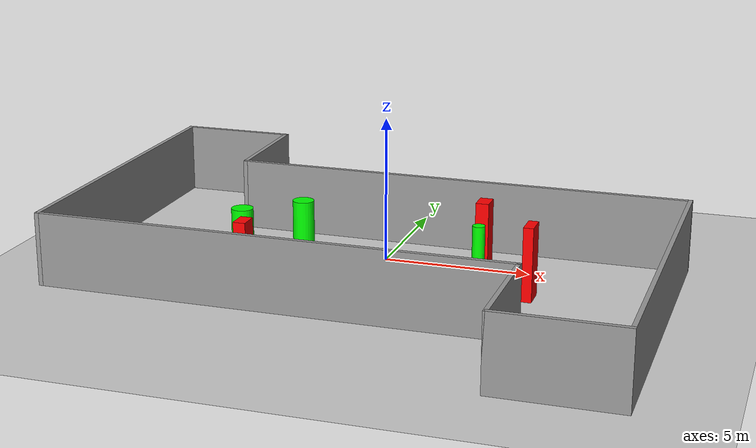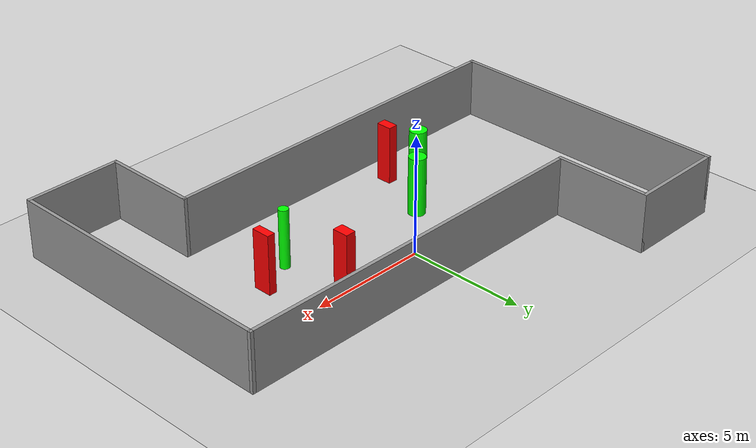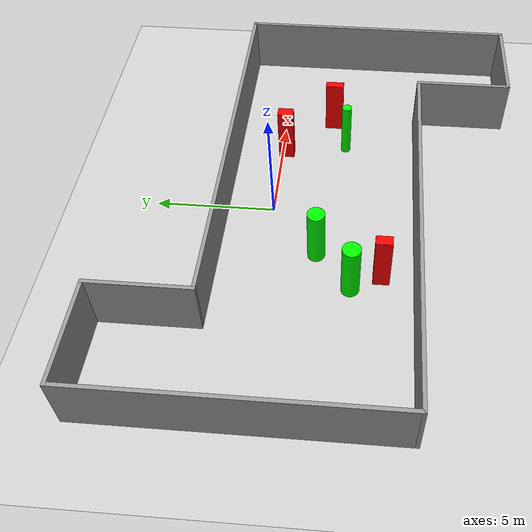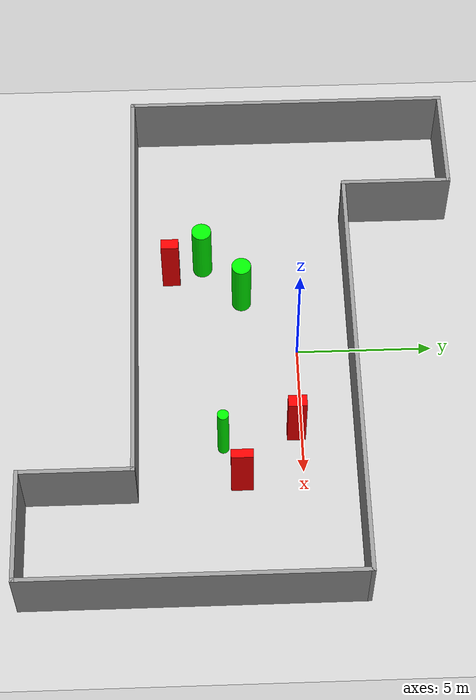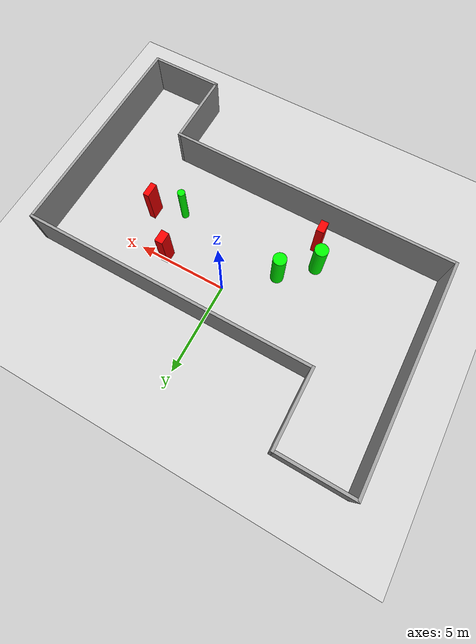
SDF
<sdf version="1.7">
 <world name="default">
  <light name="sun" type="directional">
   <pose>0 0 10 0 -0 0</pose>
   <diffuse>0.8 0.8 0.8 1</diffuse>
   <specular>0.2 0.2 0.2 1</specular>
   <attenuation>
    <range>1000</range>
    <constant>0.9</constant>
    <linear>0.01</linear>
    <quadratic>0.001</quadratic>
   </attenuation>
   <direction>-0.5 0.1 -0.9</direction>
   <spot><inner_angle>0</inner_angle><outer_angle>0</outer_angle><falloff>0</falloff></spot>
  </light>
  <model name="ground_plane">
   <static>1</static>
   <link name="link">
    <collision name="collision">
     <geometry><plane><normal>0 0 1</normal><size>100 100</size></plane></geometry>
     <surface>
      <contact><collide_bitmask>65535</collide_bitmask></contact>
      <friction><ode><mu>100</mu><mu2>50</mu2></ode></friction>
     </surface>
    </collision>
    <visual name="visual">
     <cast_shadows>0</cast_shadows>
     <geometry><plane><normal>0 0 1</normal><size>100 100</size></plane></geometry>
     <material>
      <script><uri>file://media/materials/scripts/gazebo.material</uri><name>Gazebo/Grey</name></script>
     </material>
    </visual>
   </link>
  </model>
  <gravity>0 0 -9.8</gravity>
  <magnetic_field>6e-06 2.3e-05 -4.2e-05</magnetic_field>
  <atmosphere type="adiabatic"/>
  <physics type="ode">
   <max_step_size>0.001</max_step_size>
   <real_time_factor>1</real_time_factor>
   <real_time_update_rate>1000</real_time_update_rate>
  </physics>
  <scene><ambient>0.4 0.4 0.4 1</ambient><background>0.7 0.7 0.7 1</background><shadows>1</shadows></scene>
  <spherical_coordinates>
   <surface_model>EARTH_WGS84</surface_model>
   <latitude_deg>0</latitude_deg>
   <longitude_deg>0</longitude_deg>
   <elevation>0</elevation>
   <heading_deg>0</heading_deg>
  </spherical_coordinates>
  <model name="my_base_walls">
   <link name="Wall_13">
    <collision name="Wall_13_Collision">
     <geometry><box><size>12.15 0.15 2.5</size></box></geometry>
     <pose>0 0 1.25 0 -0 0</pose>
    </collision>
    <visual name="Wall_13_Visual">
     <pose>0 0 1.25 0 -0 0</pose>
     <geometry><box><size>12.15 0.15 2.5</size></box></geometry>
     <material>
      <script><uri>file://media/materials/scripts/gazebo.material</uri><name>Gazebo/Grey</name></script>
      <ambient>1 1 1 1</ambient>
     </material>
     <meta><layer>0</layer></meta>
    </visual>
    <pose>10 -2 0 0 -0 1.5708</pose>
   </link>
   <link name="Wall_15">
    <collision name="Wall_15_Collision">
     <geometry><box><size>16.15 0.15 2.5</size></box></geometry>
     <pose>0 0 1.25 0 -0 0</pose>
    </collision>
    <visual name="Wall_15_Visual">
     <pose>0 0 1.25 0 -0 0</pose>
     <geometry><box><size>16.15 0.15 2.5</size></box></geometry>
     <material>
      <script><uri>file://media/materials/scripts/gazebo.material</uri><name>Gazebo/Grey</name></script>
      <ambient>1 1 1 1</ambient>
     </material>
     <meta><layer>0</layer></meta>
    </visual>
    <pose>2 4 0 0 -0 3.14159</pose>
   </link>
   <link name="Wall_17">
    <collision name="Wall_17_Collision">
     <geometry><box><size>4.15 0.15 2.5</size></box></geometry>
     <pose>0 0 1.25 0 -0 0</pose>
    </collision>
    <visual name="Wall_17_Visual">
     <pose>0 0 1.25 0 -0 0</pose>
     <geometry><box><size>4.15 0.15 2.5</size></box></geometry>
     <material>
      <script><uri>file://media/materials/scripts/gazebo.material</uri><name>Gazebo/Grey</name></script>
      <ambient>1 1 1 1</ambient>
     </material>
     <meta><layer>0</layer></meta>
    </visual>
    <pose>6 -6 0 0 -0 -1.5708</pose>
   </link>
   <link name="Wall_19">
    <collision name="Wall_19_Collision">
     <geometry><box><size>12.15 0.15 2.5</size></box></geometry>
     <pose>0 0 1.25 0 -0 0</pose>
    </collision>
    <visual name="Wall_19_Visual">
     <pose>0 0 1.25 0 -0 0</pose>
     <geometry><box><size>12.15 0.15 2.5</size></box></geometry>
     <material>
      <script><uri>file://media/materials/scripts/gazebo.material</uri><name>Gazebo/Grey</name></script>
      <ambient>1 1 1 1</ambient>
     </material>
     <meta><layer>0</layer></meta>
    </visual>
    <pose>-10 2 0 0 -0 1.5708</pose>
   </link>
   <link name="Wall_21">
    <collision name="Wall_21_Collision">
     <geometry><box><size>4.15 0.15 2.5</size></box></geometry>
     <pose>0 0 1.25 0 -0 0</pose>
    </collision>
    <visual name="Wall_21_Visual">
     <pose>0 0 1.25 0 -0 0</pose>
     <geometry><box><size>4.15 0.15 2.5</size></box></geometry>
     <material>
      <script><uri>file://media/materials/scripts/gazebo.material</uri><name>Gazebo/Grey</name></script>
      <ambient>1 1 1 1</ambient>
     </material>
     <meta><layer>0</layer></meta>
    </visual>
    <pose>-8 8 0 0 -0 0</pose>
   </link>
   <link name="Wall_23">
    <collision name="Wall_23_Collision">
     <geometry><box><size>4.15 0.15 2.5</size></box></geometry>
     <pose>0 0 1.25 0 -0 0</pose>
    </collision>
    <visual name="Wall_23_Visual">
     <pose>0 0 1.25 0 -0 0</pose>
     <geometry><box><size>4.15 0.15 2.5</size></box></geometry>
     <material>
      <script><uri>file://media/materials/scripts/gazebo.material</uri><name>Gazebo/Grey</name></script>
      <ambient>1 1 1 1</ambient>
     </material>
     <meta><layer>0</layer></meta>
    </visual>
    <pose>-6 6 0 0 -0 -1.5708</pose>
   </link>
   <link name="Wall_25">
    <collision name="Wall_25_Collision">
     <geometry><box><size>4.15 0.15 2.5</size></box></geometry>
     <pose>0 0 1.25 0 -0 0</pose>
    </collision>
    <visual name="Wall_25_Visual">
     <pose>0 0 1.25 0 -0 0</pose>
     <geometry><box><size>4.15 0.15 2.5</size></box></geometry>
     <material>
      <script><uri>file://media/materials/scripts/gazebo.material</uri><name>Gazebo/Grey</name></script>
      <ambient>1 1 1 1</ambient>
     </material>
     <meta><layer>0</layer></meta>
    </visual>
    <pose>8 -8 0 0 -0 0</pose>
   </link>
   <link name="Wall_9">
    <collision name="Wall_9_Collision">
     <geometry><box><size>16.15 0.15 2.5</size></box></geometry>
     <pose>0 0 1.25 0 -0 0</pose>
    </collision>
    <visual name="Wall_9_Visual">
     <pose>0 0 1.25 0 -0 0</pose>
     <geometry><box><size>16.15 0.15 2.5</size></box></geometry>
     <material>
      <script><uri>file://media/materials/scripts/gazebo.material</uri><name>Gazebo/Grey</name></script>
      <ambient>1 1 1 1</ambient>
     </material>
     <meta><layer>0</layer></meta>
    </visual>
    <pose>-2 -4 0 0 -0 3.14159</pose>
   </link>
   <static>1</static>
   <pose>-0 -2 0 0 -0 0</pose>
  </model>
  <model name="cylinder1">
   <static>1</static>
   <link name="link">
    <inertial>
     <mass>1</mass>
     <inertia><ixx>0.5</ixx><ixy>0</ixy><ixz>0</ixz><iyy>0.5</iyy><iyz>0</iyz><izz>1</izz></inertia>
    </inertial>
    <collision name="collision">
     <geometry><cylinder><radius>0.2054040767365752</radius><length>2.5</length></cylinder></geometry>
    </collision>
    <visual name="visual">
     <geometry><cylinder><radius>0.2054040767365752</radius><length>2.5</length></cylinder></geometry>
     <material>
      <ambient>0 1 0 1</ambient>
      <diffuse>0 1 0 1</diffuse>
      <specular>0.1 0.1 0.1 1</specular>
      <emissive>0 0 0 0</emissive>
     </material>
    </visual>
   </link>
   <pose>3.979491091443469 -2.8498178411696165 1.25 0 0 0</pose>
  </model>
  <model name="cylinder2">
   <static>1</static>
   <link name="link">
    <inertial>
     <mass>1</mass>
     <inertia><ixx>0.5</ixx><ixy>0</ixy><ixz>0</ixz><iyy>0.5</iyy><iyz>0</iyz><izz>1</izz></inertia>
    </inertial>
    <collision name="collision">
     <geometry><cylinder><radius>0.3579539746550484</radius><length>2.5</length></cylinder></geometry>
    </collision>
    <visual name="visual">
     <geometry><cylinder><radius>0.3579539746550484</radius><length>2.5</length></cylinder></geometry>
     <material>
      <ambient>0 1 0 1</ambient>
      <diffuse>0 1 0 1</diffuse>
      <specular>0.1 0.1 0.1 1</specular>
      <emissive>0 0 0 0</emissive>
     </material>
    </visual>
   </link>
   <pose>-2.2641038338759345 -2.000308758605655 1.25 0 0 0</pose>
  </model>
  <model name="cylinder3">
   <static>1</static>
   <link name="link">
    <inertial>
     <mass>1</mass>
     <inertia><ixx>0.5</ixx><ixy>0</ixy><ixz>0</ixz><iyy>0.5</iyy><iyz>0</iyz><izz>1</izz></inertia>
    </inertial>
    <collision name="collision">
     <geometry><cylinder><radius>0.36355704754592927</radius><length>2.5</length></cylinder></geometry>
    </collision>
    <visual name="visual">
     <geometry><cylinder><radius>0.36355704754592927</radius><length>2.5</length></cylinder></geometry>
     <material>
      <ambient>0 1 0 1</ambient>
      <diffuse>0 1 0 1</diffuse>
      <specular>0.1 0.1 0.1 1</specular>
      <emissive>0 0 0 0</emissive>
     </material>
    </visual>
   </link>
   <pose>-3.8636476092023093 -3.4438282326397642 1.25 0 0 0</pose>
  </model>
  <model name="box1">
   <static>1</static>
   <link name="link">
    <inertial>
     <mass>1</mass>
     <inertia><ixx>0.083</ixx><ixy>0</ixy><ixz>0</ixz><iyy>0.083</iyy><iyz>0</iyz><izz>0.083</izz></inertia>
    </inertial>
    <collision name="collision">
     <geometry><box><size>0.44508208662702176 0.6693057097459101 2.5</size></box></geometry>
    </collision>
    <visual name="visual">
     <geometry><box><size>0.44508208662702176 0.6693057097459101 2.5</size></box></geometry>
     <material>
      <ambient>1 0 0 1</ambient>
      <diffuse>1 0 0 1</diffuse>
      <specular>0.1 0.1 0.1 1</specular>
      <emissive>0 0 0 0</emissive>
     </material>
    </visual>
    <sensor name="my_contact" type="contact">
     <contact><collision>box_collision</collision><topic>__default_topic__</topic></contact>
    </sensor>
   </link>
   <pose>3.4997780385644752 -0.20292198528111527 1.25 0 0 0</pose>
  </model>
  <model name="box2">
   <static>1</static>
   <link name="link">
    <inertial>
     <mass>1</mass>
     <inertia><ixx>0.083</ixx><ixy>0</ixy><ixz>0</ixz><iyy>0.083</iyy><iyz>0</iyz><izz>0.083</izz></inertia>
    </inertial>
    <collision name="collision">
     <geometry><box><size>0.3332669068141749 0.7873120334142427 2.5</size></box></geometry>
    </collision>
    <visual name="visual">
     <geometry><box><size>0.3332669068141749 0.7873120334142427 2.5</size></box></geometry>
     <material>
      <ambient>1 0 0 1</ambient>
      <diffuse>1 0 0 1</diffuse>
      <specular>0.1 0.1 0.1 1</specular>
      <emissive>0 0 0 0</emissive>
     </material>
    </visual>
    <sensor name="my_contact" type="contact">
     <contact><collision>box_collision</collision><topic>__default_topic__</topic></contact>
    </sensor>
   </link>
   <pose>5.527898305285927 -2.224578754687795 1.25 0 0 0</pose>
  </model>
  <model name="box3">
   <static>1</static>
   <link name="link">
    <inertial>
     <mass>1</mass>
     <inertia><ixx>0.083</ixx><ixy>0</ixy><ixz>0</ixz><iyy>0.083</iyy><iyz>0</iyz><izz>0.083</izz></inertia>
    </inertial>
    <collision name="collision">
     <geometry><box><size>0.4131977387500406 0.6615270211068088 2.5</size></box></geometry>
    </collision>
    <visual name="visual">
     <geometry><box><size>0.4131977387500406 0.6615270211068088 2.5</size></box></geometry>
     <material>
      <ambient>1 0 0 1</ambient>
      <diffuse>1 0 0 1</diffuse>
      <specular>0.1 0.1 0.1 1</specular>
      <emissive>0 0 0 0</emissive>
     </material>
    </visual>
    <sensor name="my_contact" type="contact">
     <contact><collision>box_collision</collision><topic>__default_topic__</topic></contact>
    </sensor>
   </link>
   <pose>-3.3461688503245948 -4.638341774794728 1.25 0 0 0</pose>
  </model>
 </world>
</sdf>
